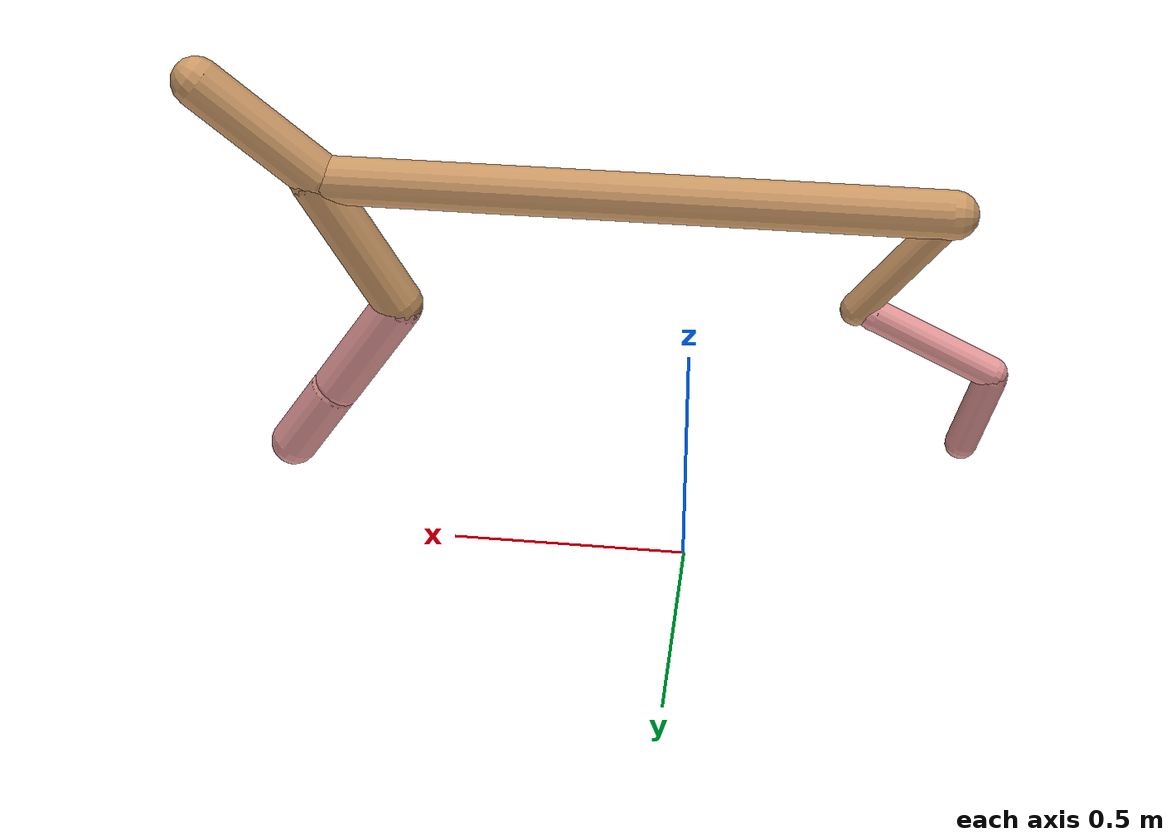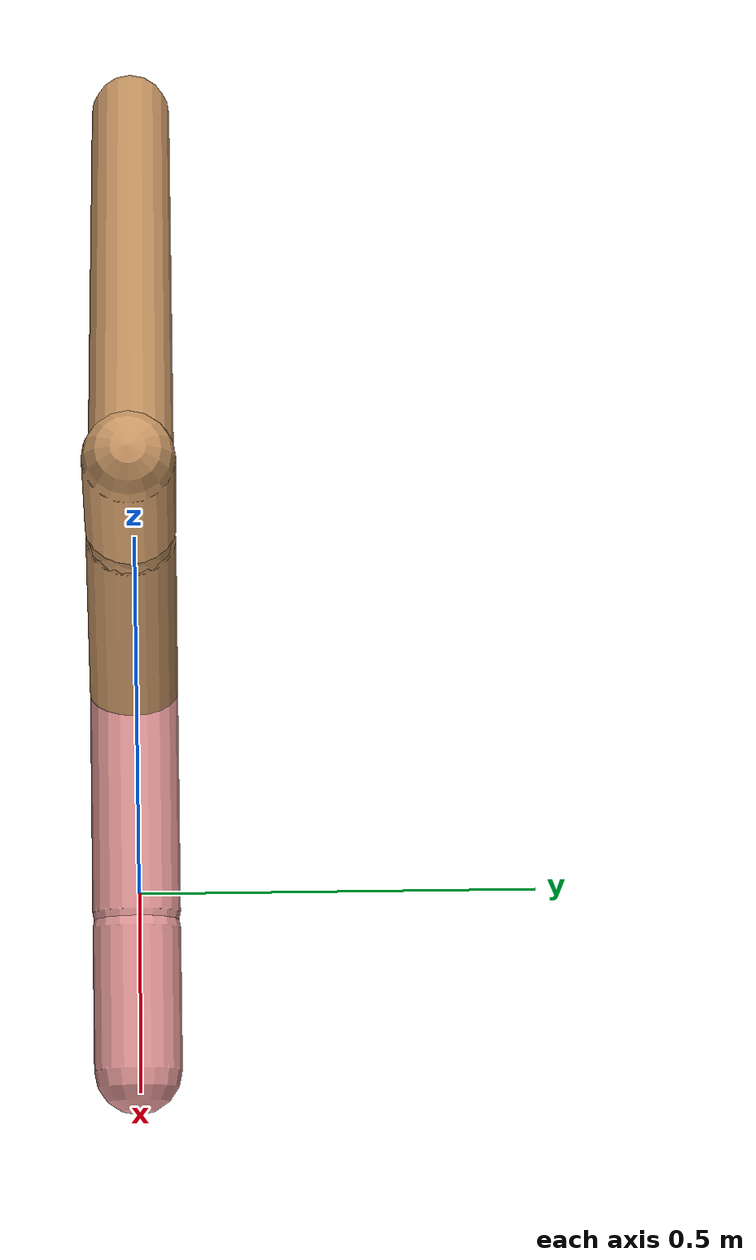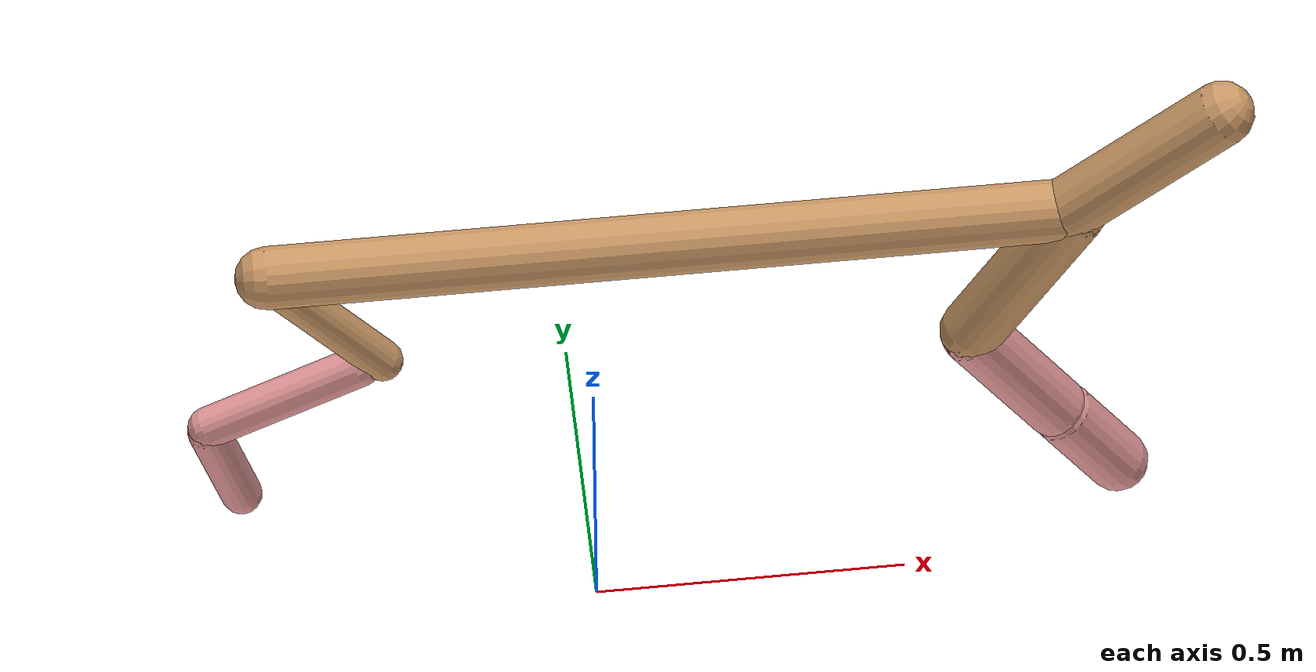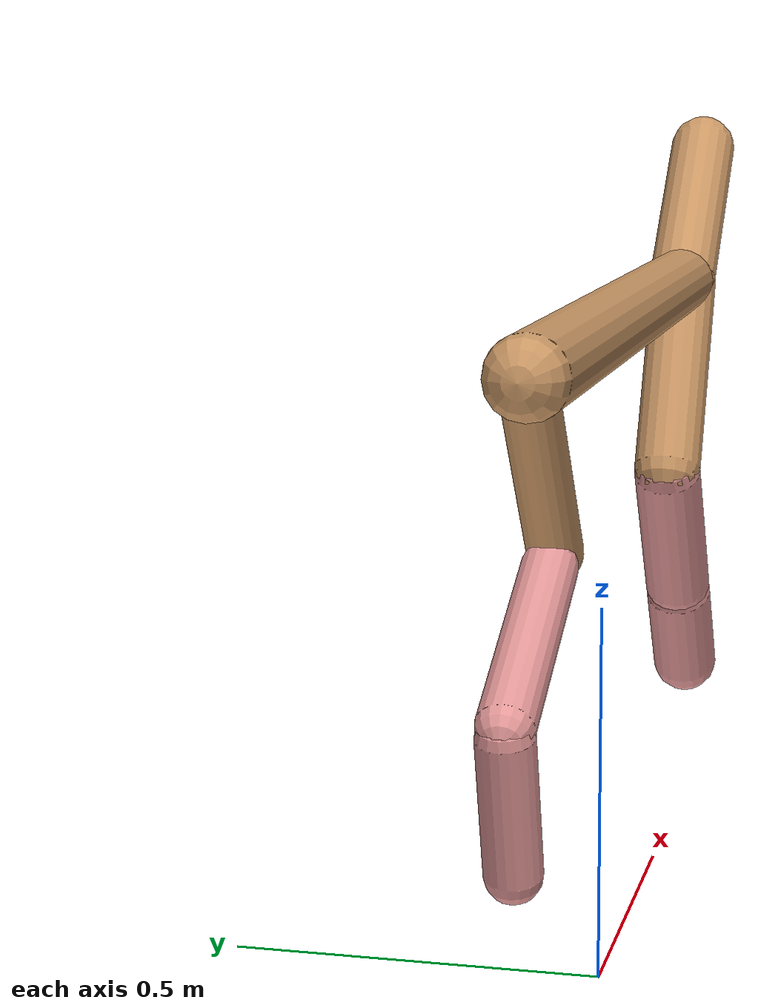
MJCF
<mujoco model="cheetah">
  <compiler angle="radian" coordinate="local" inertiafromgeom="true" settotalmass="14" />
  <default>
    <joint armature=".1" damping=".01" limited="true" solimplimit="0 .8 .03" solreflimit=".02 1" stiffness="8" />
    <geom conaffinity="0" condim="3" contype="1" friction="0.8 .1 .1" rgba="0.8 0.6 .4 1" solimp="0.0 0.8 0.01" solref="0.02 1" />
    <motor ctrllimited="true" ctrlrange="-1 1" />
  </default>
  <size nstack="300000" nuser_geom="1" />
  <option gravity="0 0 -9.81" timestep="0.01" />
  <worldbody>
    <body name="torso" pos="0.0 0.0 0.8600432322885638">
      <joint armature="0" axis="1 0 0" damping="0" limited="false" name="ignorex" pos="0 0 0" stiffness="0" type="slide" />
      <joint armature="0" axis="0 0 1" damping="0" limited="false" name="ignorez" pos="0 0 0" stiffness="0" type="slide" />
      <joint armature="0" axis="0 1 0" damping="0" limited="false" name="ignorey" pos="0 0 0" stiffness="0" type="hinge" />
      <geom fromto="-0.5 0.0 0.0 0.7536070560702561 0.0 0.0" name="torso" size="0.0488176163005862" type="capsule" />
      <geom axisangle="0 1 0 .87" name="head" pos="0.8536070560702561 0.0 0.1" size="0.05095874978977365 0.15" type="capsule" />

      <body name="bthigh" pos="-.5 0 0">
        <joint axis="0 1 0" damping="6" name="bthigh" pos="0 0 0" range="-.52 1.05" stiffness="240" type="hinge" />
        <geom axisangle="0 1 0 -3.8" name="bthigh" pos="0.0913406176852897 0.0 -0.11874280299087661" size="0.032778602013450224 0.13079755702090184" type="capsule" />
        <body name="bshin" pos="0.1426812353705794 0.0 -0.22748560598175321">
          <joint axis="0 1 0" damping="4.5" name="bshin" pos="0 0 0" range="-.785 .785" stiffness="180" type="hinge" />
          <geom axisangle="0 1 0 -2.03" name="bshin" pos="-0.12685891257331253 0.0 -0.06342945628665626" rgba="0.9 0.6 0.6 1" size="0.032778602013450224 0.1353078176078295" type="capsule" />
          <body name="bfoot" pos="-0.25371782514662505 0.0 -0.12685891257331253">
            <joint axis="0 1 0" damping="3" name="bfoot" pos="0 0 0" range="-.4 .785" stiffness="120" type="hinge" />
            <geom axisangle="0 1 0 -.27" name="bfoot" pos="0.027279580428731336 0.0 -0.08820397671956466" rgba="0.9 0.6 0.6 1" size="0.032778602013450224 0.08479289903423982" type="capsule" />
            <inertial mass="10" />
          </body>
        </body>
      </body>
      <body name="fthigh" pos="0.7536070560702561 0.0 0.0">
        <joint axis="0 1 0" damping="4.5" name="fthigh" pos="0 0 0" range="-1.5 0.8" stiffness="180" type="hinge" />
        <geom axisangle="0 1 0 .52" name="fthigh" pos="-0.08121890442293929 0.0 -0.13923240758218164" size="0.050331235293997904 0.1552654287598107" type="capsule" />
        <body name="fshin" pos="-0.16243780884587858 0.0 -0.2784648151643633">
          <joint axis="0 1 0" damping="3" name="fshin" pos="0 0 0" range="-1.2 1.1" stiffness="120" type="hinge" />
          <geom axisangle="0 1 0 -.6" name="fshin" pos="0.0753897519617545 0.0 -0.10438581040858314" rgba="0.9 0.6 0.6 1" size="0.050331235293997904 0.12374537931233032" type="capsule" />
          <body name="ffoot" pos="0.150779503923509 0.0 -0.20877162081716627">
            <joint axis="0 1 0" damping="1.5" name="ffoot" pos="0 0 0" range="-3.1 -0.3" stiffness="60" type="hinge" />
            <geom axisangle="0 1 0 -.6" name="ffoot" pos="0.051336947171430274 0.0 -0.07985747337778043" rgba="0.9 0.6 0.6 1" size="0.050331235293997904 0.08171864671568983" type="capsule" />
            <inertial mass="10" />
          </body>
        </body>
      </body>
    </body>
  </worldbody>
  <actuator>
    <motor gear="120" joint="bthigh" name="bthigh" />
    <motor gear="90" joint="bshin" name="bshin" />
    <motor gear="60" joint="bfoot" name="bfoot" />
    <motor gear="120" joint="fthigh" name="fthigh" />
    <motor gear="60" joint="fshin" name="fshin" />
    <motor gear="30" joint="ffoot" name="ffoot" />
  </actuator>
</mujoco>
